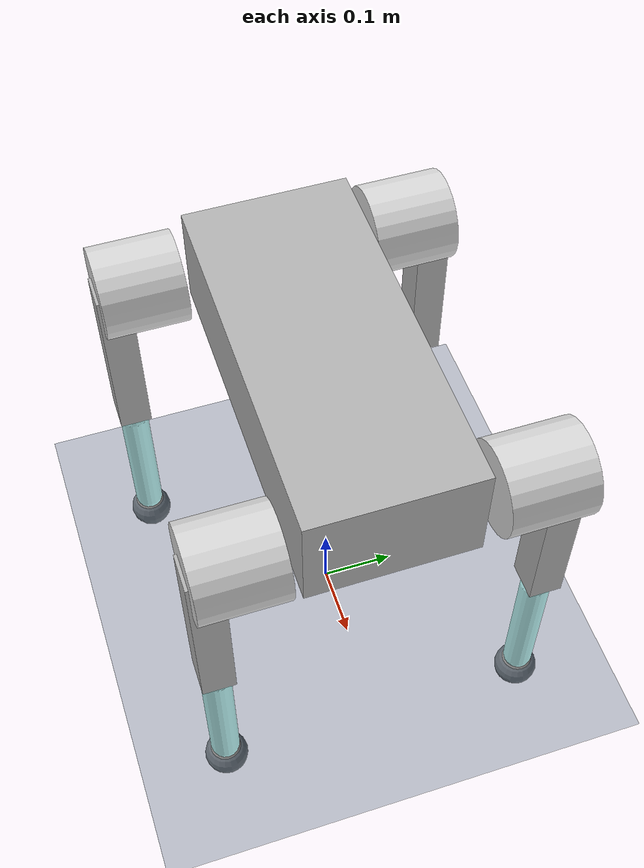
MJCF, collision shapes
<?xml version='1.0' encoding='utf-8'?>
<mujoco model="eva02_quadruped_detailed">
  <compiler angle="radian" meshdir="meshes" autolimits="true" />

  <asset>

    <texture name="tex_plane" type="2d" builtin="checker" rgb1="0.2 0.3 0.4" rgb2="0.1 0.2 0.3" width="300" height="300" mark="edge" markrgb="0.8 0.8 0.8" />
    <material name="mat_plane" texture="tex_plane" texrepeat="5 5" texuniform="true" reflectance="0.2" />

    <mesh name="body_mesh" file="body.STL" />
    <mesh name="camera_mesh" file="camera.STL" />
    <mesh name="lidar_mesh" file="lidar.STL" />
    <mesh name="FL_hip_mesh" file="FL_hip.STL" />
    <mesh name="FL_thigh_mesh" file="FL_thigh.STL" />
    <mesh name="FL_calf_mesh" file="FL_calf.STL" />
    <mesh name="FL_foot_mesh" file="FL_foot.STL" />
    <mesh name="RL_hip_mesh" file="RL_hip.STL" />
    <mesh name="RL_thigh_mesh" file="RL_thigh.STL" />
    <mesh name="RL_calf_mesh" file="RL_calf.STL" />
    <mesh name="RL_foot_mesh" file="RL_foot.STL" />

    <!-- FR meshes (mirrored from FL) -->
    <mesh name="FR_hip_mesh" file="FR_hip.STL" />
    <mesh name="FR_thigh_mesh" file="FR_thigh.STL" />
    <mesh name="FR_calf_mesh" file="FR_calf.STL" />
    <mesh name="FR_foot_mesh" file="FR_foot.STL" />

    <!-- RR meshes (mirrored from RL) -->
    <mesh name="RR_hip_mesh" file="RR_hip.STL" />
    <mesh name="RR_thigh_mesh" file="RR_thigh.STL" />
    <mesh name="RR_calf_mesh" file="RR_calf.STL" />
    <mesh name="RR_foot_mesh" file="RR_foot.STL" />

    <material name="mat_body" rgba="0.698 0.698 0.698 1.0" specular="0.5" shininess="0.25" />
    <material name="mat_hip" rgba="0.85 0.85 0.85 1.0" specular="0.6" shininess="0.3" />
    <material name="mat_thigh" rgba="0.698 0.698 0.698 1.0" specular="0.5" shininess="0.25" />
    <material name="mat_calf" rgba="0.753 1.0 1.0 1.0" specular="0.7" shininess="0.35" />
    <material name="mat_foot" rgba="0.502 0.502 0.502 1.0" specular="0.4" shininess="0.2" />
    <material name="mat_sensor" rgba="0.792 0.82 0.933 1.0" specular="0.8" shininess="0.4" />
  </asset>

  <default>
    <geom condim="3" friction="1.0 0.005 0.0001" />
    <joint type="hinge" limited="true" armature="0.01" damping="0.1" frictionloss="0.01" />
    <motor ctrlrange="-100 100" />
    <default class="visual">
      <geom type="mesh" contype="0" conaffinity="0" group="1" density="0" />
    </default>
    <default class="collision">
      <geom group="3" />
    </default>
  </default>

  <worldbody>

    <light name="spotlight" pos="0 0 10" dir="0 0 -1" diffuse="1.0 1.0 1.0" specular="0.3 0.3 0.3" />
    <light name="ambient" pos="0 0 3" dir="0 0 -1" diffuse="0.4 0.4 0.4" directional="false" />
    <geom name="floor" type="plane" pos="0 0 0" size="10 10 0.1" material="mat_plane" condim="3" />

    <body name="base" pos="0 0 0.4">
      <inertial pos="0.011858 0.000475 0.060237" mass="2.03" diaginertia="0.035961 0.031045 0.013523" />
      <freejoint name="base_joint" />

      <geom name="body_visual" type="mesh" mesh="body_mesh" material="mat_body" class="visual" />

      <geom name="base_collision" type="box" pos="0 0 0.07" size="0.25 0.11 0.07" class="collision" rgba="0.698 0.698 0.698 0.3" />

      <site name="imu_site" pos="0 0 0" size="0.01" />

      <geom name="camera_visual" type="mesh" mesh="camera_mesh" pos="0.28698 0 0.1895" material="mat_sensor" class="visual" />

      <geom name="lidar_visual" type="mesh" mesh="lidar_mesh" pos="0.264 0 0.0985" material="mat_sensor" class="visual" />

      <body name="FL_hip" pos="0.2181 0.09179 0.06815">
        <inertial pos="-0.013264 -0.000827 0.000642" mass="0.606" diaginertia="0.000779 0.000677 0.000428" />
        <joint name="FL_hip_joint" axis="1 0 0" range="-1.0472 1.0472" />

        <geom name="FL_hip_visual" type="mesh" mesh="FL_hip_mesh" material="mat_hip" class="visual" />

        <geom name="FL_hip_collision" type="cylinder" pos="0 0.09 0" size="0.06 0.055" quat="0.707107 0.707107 0 0" class="collision" rgba="0.85 0.85 0.85 0.3" />

        <body name="FL_thigh" pos="0 0.1271 0">
          <inertial pos="-0.001468 -0.034831 -0.021338" mass="1.542" diaginertia="0.007342 0.007173 0.002278" />
          <joint name="FL_thigh_joint" axis="0 1 0" range="-1.5708 3.4907" />

          <geom name="FL_thigh_visual" type="mesh" mesh="FL_thigh_mesh" material="mat_thigh" class="visual" />

          <geom name="FL_thigh_collision" type="box" pos="0 0 -0.12" size="0.025 0.022 0.125" class="collision" rgba="0.698 0.698 0.698 0.3" />

          <body name="FL_calf" pos="0 0 -0.24">
            <inertial pos="-0.046217 -0.000153 -0.054807" mass="0.307" diaginertia="0.009438 0.008918 0.000571" />
            <joint name="FL_calf_joint" axis="0 1 0" range="-2.7227 -0.83776" />

            <geom name="FL_calf_visual" type="mesh" mesh="FL_calf_mesh" material="mat_calf" class="visual" />

            <geom name="FL_calf_collision" type="capsule" fromto="0 0 -0.02 0 0 -0.22" size="0.02" class="collision" rgba="0.753 1.0 1.0 0.3" />

            <geom name="FL_foot_visual" type="mesh" mesh="FL_foot_mesh" pos="0 0 -0.25" material="mat_foot" class="visual" />

            <geom name="FL_foot_collision" type="sphere" pos="0 0 -0.25" size="0.03" class="collision" rgba="0.502 0.502 0.502 0.5" />

            <site name="FL_foot_site" pos="0 0 -0.25" size="0.02" />
          </body>
        </body>
      </body>

      <body name="FR_hip" pos="0.2181 -0.09179 0.06815">
        <inertial pos="-0.013264 0.000827 0.000642" mass="0.606" diaginertia="0.000779 0.000677 0.000428" />
        <joint name="FR_hip_joint" axis="1 0 0" range="-1.0472 1.0472" />

        <geom name="FR_hip_visual" type="mesh" mesh="FR_hip_mesh" material="mat_hip" class="visual" />
        <geom name="FR_hip_collision" type="cylinder" pos="0 -0.09 0" size="0.06 0.055" quat="0.707107 0.707107 0 0" class="collision" rgba="0.85 0.85 0.85 0.3" />

        <body name="FR_thigh" pos="0 -0.1271 0">
          <inertial pos="-0.001468 0.034831 -0.021338" mass="1.542" diaginertia="0.007342 0.007173 0.002278" />
          <joint name="FR_thigh_joint" axis="0 1 0" range="-1.5708 3.4907" />

          <geom name="FR_thigh_visual" type="mesh" mesh="FR_thigh_mesh" material="mat_thigh" class="visual" />
          <geom name="FR_thigh_collision" type="box" pos="0 0 -0.12" size="0.025 0.022 0.125" class="collision" rgba="0.698 0.698 0.698 0.3" />

          <body name="FR_calf" pos="0 0 -0.24">
            <inertial pos="-0.046217 0.000153 -0.054807" mass="0.307" diaginertia="0.009438 0.008918 0.000571" />
            <joint name="FR_calf_joint" axis="0 1 0" range="-2.7227 -0.83776" />

            <geom name="FR_calf_visual" type="mesh" mesh="FR_calf_mesh" material="mat_calf" class="visual" />
            <geom name="FR_calf_collision" type="capsule" fromto="0 0 -0.02 0 0 -0.22" size="0.02" class="collision" rgba="0.753 1.0 1.0 0.3" />

            <geom name="FR_foot_visual" type="mesh" mesh="FR_foot_mesh" pos="0 0 -0.25" material="mat_foot" class="visual" />
            <geom name="FR_foot_collision" type="sphere" pos="0 0 -0.25" size="0.03" class="collision" rgba="0.502 0.502 0.502 0.5" />

            <site name="FR_foot_site" pos="0 0 -0.25" size="0.02" />
          </body>
        </body>
      </body>

      <body name="RL_hip" pos="-0.2206 0.09179 0.06815">
        <inertial pos="0.011265 -0.004382 -4.2e-05" mass="0.815" diaginertia="0.001006 0.000865 0.000501" />
        <joint name="RL_hip_joint" axis="1 0 0" range="-1.0472 1.0472" />

        <geom name="RL_hip_visual" type="mesh" mesh="RL_hip_mesh" material="mat_hip" class="visual" />
        <geom name="RL_hip_collision" type="cylinder" pos="0 0.09 0" size="0.06 0.055" quat="0.707107 0.707107 0 0" class="collision" rgba="0.85 0.85 0.85 0.3" />

        <body name="RL_thigh" pos="0 0.1271 0">
          <inertial pos="-0.001573 -0.032493 -0.021284" mass="1.536" diaginertia="0.007201 0.007125 0.002167" />
          <joint name="RL_thigh_joint" axis="0 1 0" range="-1.5708 3.4907" />

          <geom name="RL_thigh_visual" type="mesh" mesh="RL_thigh_mesh" material="mat_thigh" class="visual" />
          <geom name="RL_thigh_collision" type="box" pos="0 0 -0.12" size="0.025 0.022 0.125" class="collision" rgba="0.698 0.698 0.698 0.3" />

          <body name="RL_calf" pos="0 0 -0.24">
            <inertial pos="-0.046217 -0.000153 -0.054807" mass="0.307" diaginertia="0.009438 0.008834 0.000656" />
            <joint name="RL_calf_joint" axis="0 1 0" range="-2.7227 -0.83776" />

            <geom name="RL_calf_visual" type="mesh" mesh="RL_calf_mesh" material="mat_calf" class="visual" />
            <geom name="RL_calf_collision" type="capsule" fromto="0 0 -0.02 0 0 -0.22" size="0.02" class="collision" rgba="0.753 1.0 1.0 0.3" />

            <geom name="RL_foot_visual" type="mesh" mesh="RL_foot_mesh" pos="0 0 -0.25" material="mat_foot" class="visual" />
            <geom name="RL_foot_collision" type="sphere" pos="0 0 -0.25" size="0.03" class="collision" rgba="0.502 0.502 0.502 0.5" />

            <site name="RL_foot_site" pos="0 0 -0.25" size="0.02" />
          </body>
        </body>
      </body>

      <body name="RR_hip" pos="-0.2206 -0.09179 0.06815">
        <inertial pos="0.011265 0.004382 -4.2e-05" mass="0.815" diaginertia="0.001006 0.000865 0.000501" />
        <joint name="RR_hip_joint" axis="1 0 0" range="-1.0472 1.0472" />

        <geom name="RR_hip_visual" type="mesh" mesh="RR_hip_mesh" material="mat_hip" class="visual" />
        <geom name="RR_hip_collision" type="cylinder" pos="0 -0.09 0" size="0.06 0.055" quat="0.707107 0.707107 0 0" class="collision" rgba="0.85 0.85 0.85 0.3" />

        <body name="RR_thigh" pos="0 -0.1271 0">
          <inertial pos="-0.001573 0.032493 -0.021284" mass="1.536" diaginertia="0.007201 0.007125 0.002167" />
          <joint name="RR_thigh_joint" axis="0 1 0" range="-1.5708 3.4907" />

          <geom name="RR_thigh_visual" type="mesh" mesh="RR_thigh_mesh" material="mat_thigh" class="visual" />
          <geom name="RR_thigh_collision" type="box" pos="0 0 -0.12" size="0.025 0.022 0.125" class="collision" rgba="0.698 0.698 0.698 0.3" />

          <body name="RR_calf" pos="0 0 -0.24">
            <inertial pos="-0.046217 0.000153 -0.054807" mass="0.307" diaginertia="0.009438 0.008834 0.000656" />
            <joint name="RR_calf_joint" axis="0 1 0" range="-2.7227 -0.83776" />

            <geom name="RR_calf_visual" type="mesh" mesh="RR_calf_mesh" material="mat_calf" class="visual" />
            <geom name="RR_calf_collision" type="capsule" fromto="0 0 -0.02 0 0 -0.22" size="0.02" class="collision" rgba="0.753 1.0 1.0 0.3" />

            <geom name="RR_foot_visual" type="mesh" mesh="RR_foot_mesh" pos="0 0 -0.25" material="mat_foot" class="visual" />
            <geom name="RR_foot_collision" type="sphere" pos="0 0 -0.25" size="0.03" class="collision" rgba="0.502 0.502 0.502 0.5" />

            <site name="RR_foot_site" pos="0 0 -0.25" size="0.02" />
          </body>
        </body>
      </body>

    </body>
  </worldbody>

  <actuator>

    <position name="FL_hip_motor" joint="FL_hip_joint" kp="100.0" kv="5.0" ctrlrange="-1.0472 1.0472" />
    <position name="FL_thigh_motor" joint="FL_thigh_joint" kp="100.0" kv="5.0" ctrlrange="-1.5708 3.4907" />
    <position name="FL_calf_motor" joint="FL_calf_joint" kp="100.0" kv="5.0" ctrlrange="-2.7227 -0.83776" />

    <position name="FR_hip_motor" joint="FR_hip_joint" kp="100.0" kv="5.0" ctrlrange="-1.0472 1.0472" />
    <position name="FR_thigh_motor" joint="FR_thigh_joint" kp="100.0" kv="5.0" ctrlrange="-1.5708 3.4907" />
    <position name="FR_calf_motor" joint="FR_calf_joint" kp="100.0" kv="5.0" ctrlrange="-2.7227 -0.83776" />

    <position name="RL_hip_motor" joint="RL_hip_joint" kp="100.0" kv="5.0" ctrlrange="-1.0472 1.0472" />
    <position name="RL_thigh_motor" joint="RL_thigh_joint" kp="100.0" kv="5.0" ctrlrange="-1.5708 3.4907" />
    <position name="RL_calf_motor" joint="RL_calf_joint" kp="100.0" kv="5.0" ctrlrange="-2.7227 -0.83776" />

    <position name="RR_hip_motor" joint="RR_hip_joint" kp="100.0" kv="5.0" ctrlrange="-1.0472 1.0472" />
    <position name="RR_thigh_motor" joint="RR_thigh_joint" kp="100.0" kv="5.0" ctrlrange="-1.5708 3.4907" />
    <position name="RR_calf_motor" joint="RR_calf_joint" kp="100.0" kv="5.0" ctrlrange="-2.7227 -0.83776" />
  </actuator>

  <sensor>

    <accelerometer name="base_accel" site="imu_site" />
    <gyro name="base_gyro" site="imu_site" />
    <framequat name="base_quat" objtype="site" objname="imu_site" />

    <touch name="FL_foot_contact" site="FL_foot_site" />
    <touch name="FR_foot_contact" site="FR_foot_site" />
    <touch name="RL_foot_contact" site="RL_foot_site" />
    <touch name="RR_foot_contact" site="RR_foot_site" />
  </sensor>

</mujoco>
